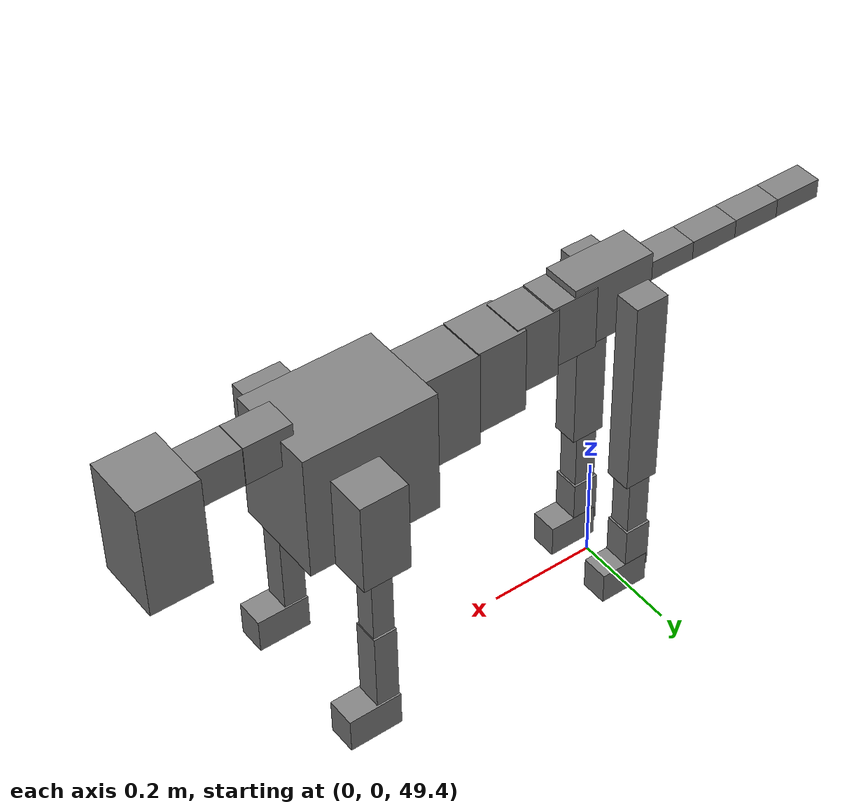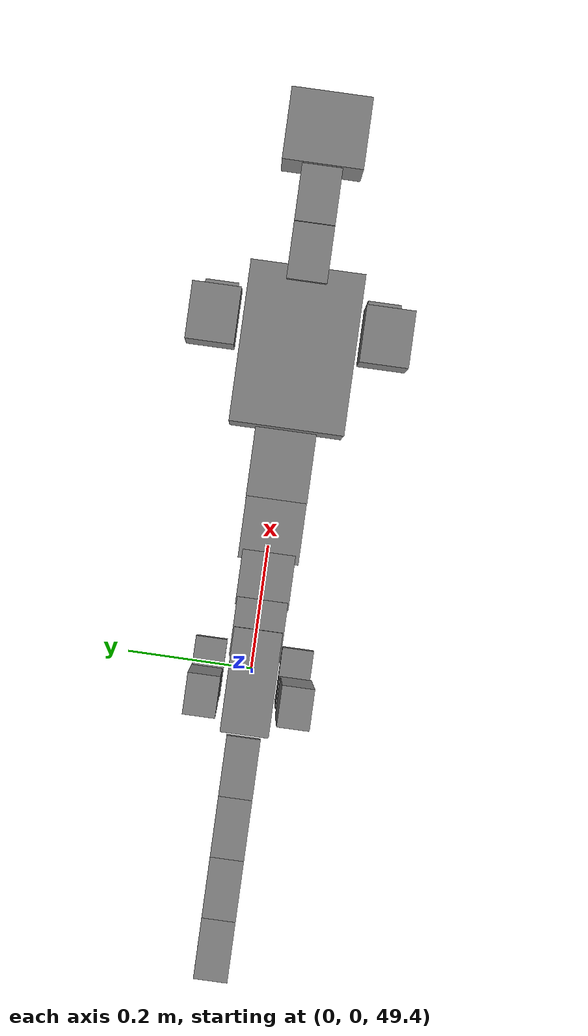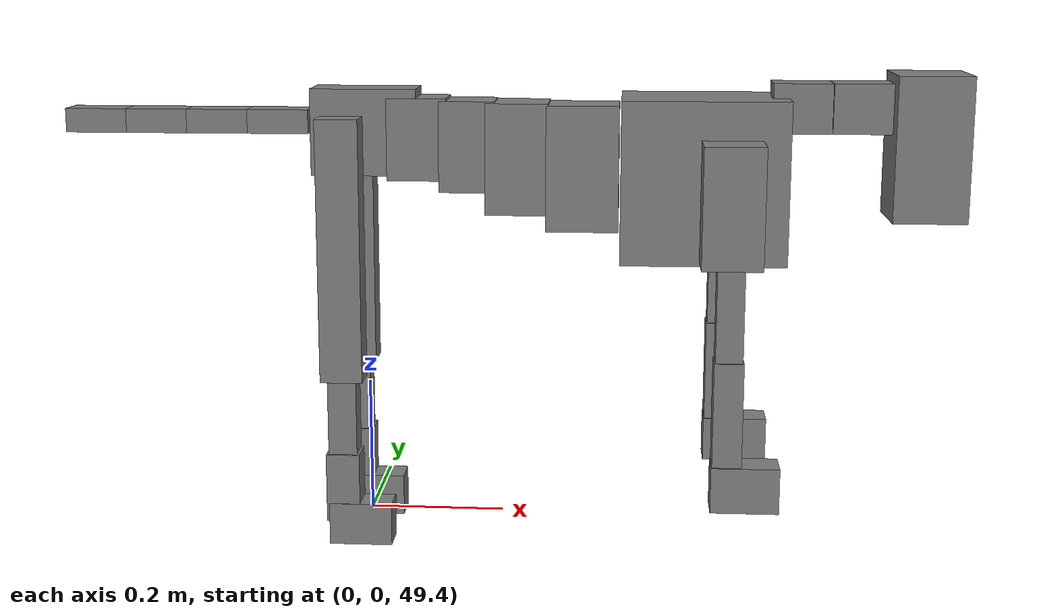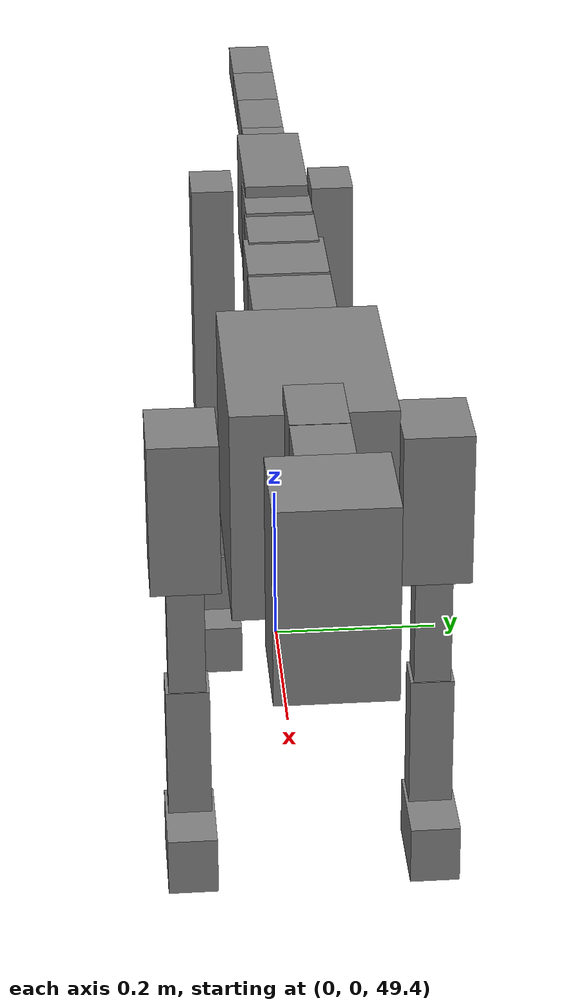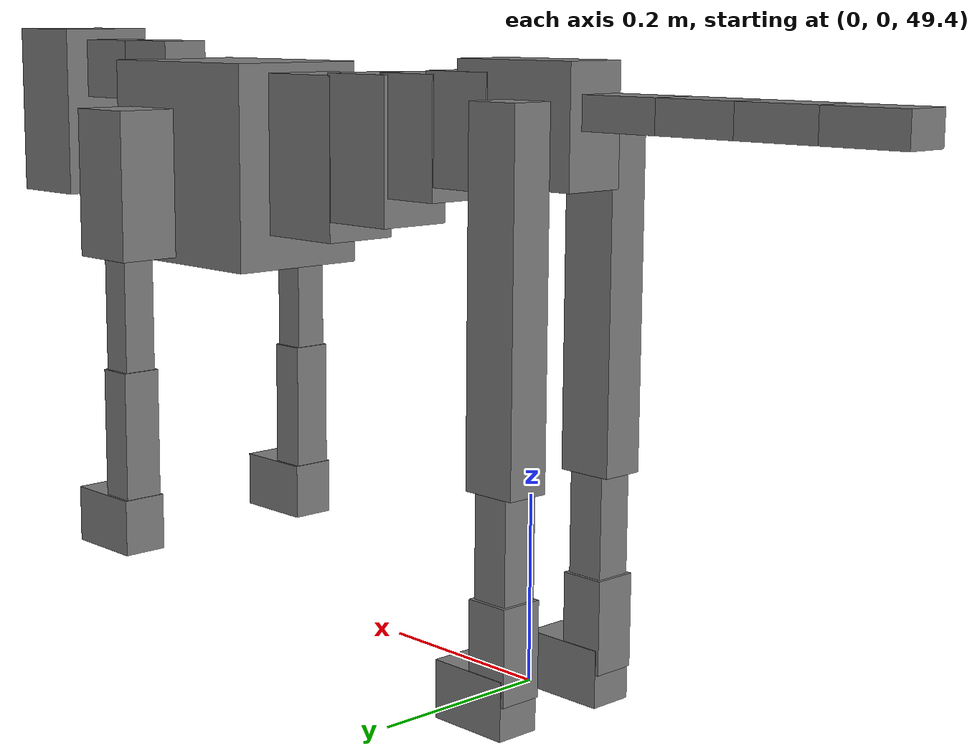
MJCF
<mujoco model="dog">

    <default>
        <joint armature="0.02" stiffness="1" damping="0.2" limited="true"/>
        <geom condim="3" friction="1 0.05 0.05" margin="0.01"/>
        <motor ctrllimited="true" ctrlrange="-1.0 1.0" forcelimited="true" gear="50"/>
    </default>

    <compiler inertiafromgeom="true" angle="radian"/>

    <option timestep="0.016" iterations="50" tolerance="1e-10" solver="Newton" jacobian="dense" cone="pyramidal"/>

    <size nconmax="20000" njmax="60000" nstack="5000000"/>
    <visual>
        <map force="0.1" zfar="30"/>
        <rgba haze="0.15 0.25 0.35 1"/>
        <quality shadowsize="2048"/>
        <global offwidth="800" offheight="800"/>
    </visual>

    <asset>
        <texture type="skybox" builtin="gradient" rgb1="0.3 0.5 0.7" rgb2="0 0 0" width="512" height="512"/>
        <texture name="texplane" type="2d" builtin="checker" rgb1=".2 .3 .4" rgb2=".1 0.15 0.2" width="512" height="512"
                 mark="cross" markrgb=".8 .8 .8"/>
        <texture name="texgeom" type="cube" builtin="flat" mark="cross" width="127" height="1278" rgb1="0.8 0.6 0.4"
                 rgb2="0.8 0.6 0.4" markrgb="1 1 1" random="0.01"/>

        <material name="matplane" reflectance="0.3" texture="texplane" texrepeat="1 1" texuniform="true"/>
        <material name="matgeom" texture="texgeom" texuniform="true" rgba="0.8 0.6 .4 1"/>
    </asset>

    <worldbody>
        <geom name="floor" pos="0 0 0" size="0 0 .25" type="plane" material="matplane" condim="3"/>

        <light directional="false" diffuse=".2 .2 .2" specular="0 0 0" pos="0 0 5" dir="0 0 -1" castshadow="false"/>
        <light mode="targetbodycom" target="torso" directional="false" diffuse=".8 .8 .8" specular="0.3 0.3 0.3"
               pos="0 0 4.0" dir="0 0 -1"/>

        <body name="root" pos="0 0 50">
            <freejoint name="root_1"/>
            <geom type="box" pos="0 0 -0.02" size="0.0774  0.0358  0.063" density="2030"/>

            <body name="spine1" pos="0.054 0 0">
                <joint name="spine1_y" axis="0 1 0" range="0 0.7" limited="true"/>
                <geom type="box" pos="0.02375 0 -0.03" size="0.04375  0.0375  0.05985" density="2030"/>

                <body name="spine2" pos="0.0612 0 0">
                    <joint name="spine2_y" axis="0 1 0" range="-0.15 0.15" limited="true"/>
                    <geom type="box" pos="0.03555  0  -0.04" size="0.04055  0.039  0.06615" density="2030"/>

                    <body name="spine3" pos="0.0730 0 0">
                        <joint name="spine3_y" axis="0 1 0" range="-0.15 0.15" limited="true"/>
                        <geom type="box" pos="0.03555  0  -0.057" size="0.04555  0.0445  0.081" density="2030"/>

                        <body name="spine4" pos="0.0780 0 0">
                            <joint name="spine4_y" axis="0 1 0" range="-0.15 0.15" limited="true"/>
                            <geom type="box" pos="0.05265  0  -0.07" size="0.05265  0.045  0.09135" density="2030"/>

                            <body name="torso" pos="0.1082 0 0">
                                <joint name="torso_y" axis="0 1 0" range="-0.15 0.15" limited="true"/>
                                <geom type="box" pos="0.11925  0  -0.085" size="0.11925  0.085  0.11745"
                                      density="2030"/>

                                <body name="neck1" pos="0.2160  0   0.0180">
                                    <joint name="neck1_y" axis="0 1 0" range="-1.2  -1" limited="true"/>
                                    <geom type="box" pos="0.0423  0  0" size="0.0423  0.03  0.036" density="2325"/>

                                    <body name="neck2" pos="0.0853  0  0">
                                        <joint name="neck2_y" axis="0 1 0" range="0.1  0" limited="true"/>
                                        <geom type="box" pos="0.0423  0  0" size="0.0423  0.03  0.036" density="2325"/>

                                        <body name="head" pos="0.0853  0  0">
                                            <joint name="head_y" axis="0 1 0" range="-0.3  -0.2" limited="true"/>
                                            <geom type="box" pos="0.0531  0  -0.055" size="0.0531  0.06  0.1044"
                                                  density="4030"/>

                                        </body>
                                    </body>
                                </body>

                                <body name="front_shoulder" pos="0.156  0   -0.0480">
                                    <joint name="front_shoulder_y" axis="0 1 0" range="-1 1.5" limited="true"/>
                                    <geom type="box" pos="0 0.13 -0.0595" size="0.0429  0.0367  0.0862" density="1158"/>
                                    <geom type="box" pos="0 -0.13 -0.0595" size="0.0429  0.0367  0.0862"
                                          density="1158"/>

                                    <body name="front_elbow" pos="0  0  -0.1191">
                                        <joint name="front_elbow_y" axis="0 1 0" range="-2 0" limited="true"/>
                                        <geom type="box" pos="0 0.13 -0.0868" size="0.0194  0.0198  0.0868"
                                              density="1081"/>
                                        <geom type="box" pos="0 -0.13 -0.0868" size="0.0194  0.0198  0.0868"
                                              density="1081"/>

                                        <body name="front_wrist" pos="0  0  -0.1736">
                                            <joint name="front_wrist_y" axis="0 1 0" range="-0.2 0" limited="true"/>
                                            <geom type="box" pos="0 0.13 -0.0770" size="0.0210  0.0234  0.0901"
                                                  density="1664"/>
                                            <geom type="box" pos="0 -0.13 -0.0770" size="0.0210  0.0234  0.0901"
                                                  density="1664"/>

                                            <body name="front_finger_end" pos="0  0  -0.1539">
                                                <joint name="front_finger_y" axis="0 1 0" range="-0.4 1"
                                                       limited="true"/>
                                                <geom type="box" pos="0.0266  0.13  -0.0182"
                                                      size="0.0487  0.0266  0.0332" density="1515"/>
                                                <geom type="box" pos="0.0266  -0.13  -0.0182"
                                                      size="0.0487  0.0266  0.0332" density="1515"/>

                                            </body>

                                        </body>
                                    </body>
                                </body>

                            </body>
                        </body>
                    </body>
                </body>
            </body>

            <body name="back_hip" pos="-0.03 0 -0.018">
                <joint name="back_hip_y" axis="0 1 0" range="-1.5 0.3" limited="true"/>
                <geom type="box" pos="0 0.07 -0.1700" size="0.0310  0.0243  0.1928" density="1154"/>
                <geom type="box" pos="0 -0.07 -0.1700" size="0.0310  0.0243  0.1928" density="1154"/>

                <body name="back_knee" pos="0  0  -0.3399">
                    <joint name="back_knee_y" axis="0 1 0" range="0 2.8" limited="true"/>
                    <geom type="box" pos="0 0.07 -0.0719" size="0.0210  0.0207  0.0875" density="1227"/>
                    <geom type="box" pos="0 -0.07 -0.0719" size="0.0210  0.0207  0.0875" density="1227"/>

                    <body name="back_ankle" pos="0  0  -0.1439">
                        <joint name="back_ankle_y" axis="0 1 0" range="-2.2 0" limited="true"/>
                        <geom type="box" pos="0 0.07 -0.0395" size="0.0246  0.0246  0.0508" density="1284"/>
                        <geom type="box" pos="0 -0.07 -0.0395" size="0.0246  0.0246  0.0508" density="1284"/>

                        <body name="back_toe_end" pos="0  0  -0.0790">
                            <joint name="back_toe_y" axis="0 1 0" range="-0.4 1" limited="true"/>
                            <geom type="box" pos="0.0253  0.07  -0.0162" size="0.0464  0.0253  0.0312" density="1515"/>
                            <geom type="box" pos="0.0253  -0.07  -0.0162" size="0.0464  0.0253  0.0312" density="1515"/>

                        </body>
                    </body>
                </body>
            </body>

            <body name="tail1" pos="-0.074 0 -0.006">
                <joint name="tail1_y" axis="0 1 0" range="-0.2 0.2" limited="true"/>
                <geom type="box" pos="-0.0536  0  0" size="0.045  0.025  0.0175" density="1587"/>

                <body name="tail2" pos="-0.09 0 0">
                    <joint name="tail2_y" axis="0 1 0" range="-0.2 0.2" limited="true"/>
                    <geom type="box" pos="-0.0536  0  0" size="0.045  0.025  0.0175" density="1587"/>

                    <body name="tail3" pos="-0.09 0 0">
                        <joint name="tail3_y" axis="0 1 0" range="-0.2 0.2" limited="true"/>
                        <geom type="box" pos="-0.0536  0  0" size="0.045  0.025  0.0175" density="1587"/>

                        <body name="tail4" pos="-0.09 0 0">
                            <joint name="tail4_y" axis="0 1 0" range="-0.2 0.2" limited="true"/>
                            <geom type="box" pos="-0.0536  0  0" size="0.045  0.025  0.0175" density="1587"/>

                        </body>
                    </body>
                </body>
            </body>
        </body>
    </worldbody>

    <actuator>
        <motor joint="spine1_y" forcerange="-150 150     "/>
        <motor joint="spine2_y" forcerange="-150 150     "/>
        <motor joint="spine3_y" forcerange="-150 150     "/>
        <motor joint="spine4_y" forcerange="-150 150     "/>
        <motor joint="torso_y" forcerange="-150 150     "/>
        <motor joint="neck1_y" forcerange="-100 100       "/>
        <motor joint="neck2_y" forcerange="-100 100       "/>
        <motor joint="head_y" forcerange="-150 150       "/>
        <motor joint="front_shoulder_y" forcerange="-199.36 145.36"/>
        <motor joint="front_elbow_y" forcerange="-110.65 133.53"/>
        <motor joint="front_wrist_y" forcerange="-64.24 122.86"/>
        <motor joint="front_finger_y" forcerange="-60.78 40.86"/>
        <motor joint="back_hip_y" forcerange="-320.71 203.91"/>
        <motor joint="back_knee_y" forcerange="-286.12 214.70"/>
        <motor joint="back_angle_y" forcerange="-108.18 184.96"/>
        <motor joint="back_toe_y" forcerange="-85.56 36.72"/>
        <motor joint="tail1_y" forcerange="-50 50     "/>
        <motor joint="tail2_y" forcerange="-50 50     "/>
        <motor joint="tail3_y" forcerange="-50 50     "/>
        <motor joint="tail4_y" forcerange="-50 50     "/>
    </actuator>
</mujoco>
